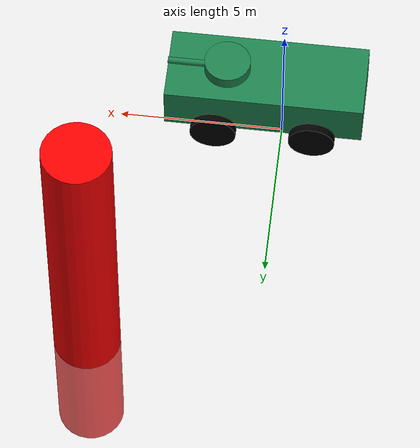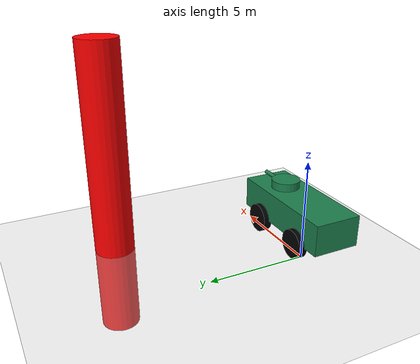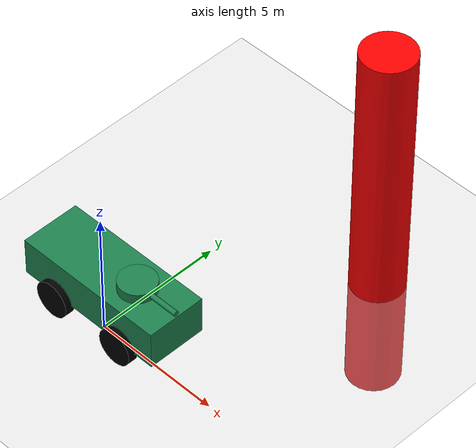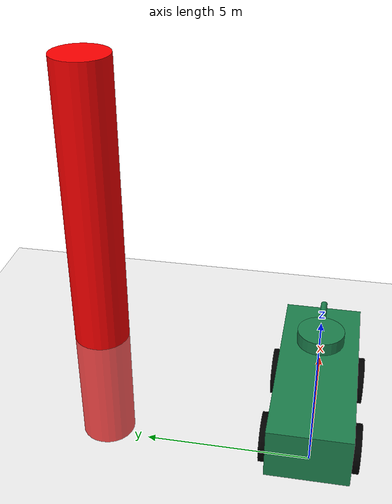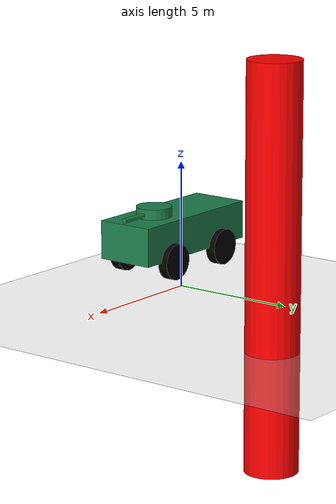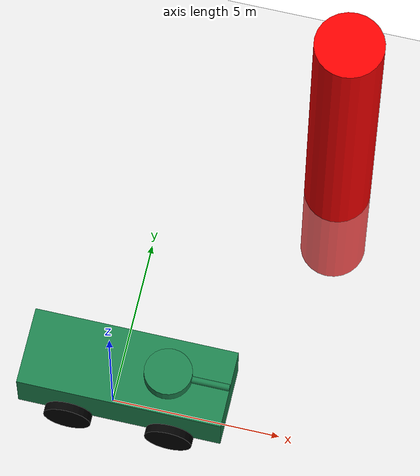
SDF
<?xml version="1.0" ?>
<sdf version="1.8">
    <world name="tank_world">
        <physics name="1ms" type="ignored">
            <max_step_size>0.001</max_step_size>
            <real_time_factor>1.0</real_time_factor>
        </physics>
        <plugin
            filename="gz-sim-physics-system"
            name="gz::sim::systems::Physics">
        </plugin>
        <plugin
            filename="gz-sim-user-commands-system"
            name="gz::sim::systems::UserCommands">
        </plugin>
        <plugin
            filename="gz-sim-scene-broadcaster-system"
            name="gz::sim::systems::SceneBroadcaster">
        </plugin>
        <plugin
            filename="libignition-gazebo-sensors-system.so"
            name="ignition::gazebo::systems::Sensors">
            <render_engine>ogre2</render_engine>
        </plugin>
        <light type="directional" name="sun">
            <cast_shadows>true</cast_shadows>
            <pose>0 0 10 0 0 0</pose>
            <diffuse>0.8 0.8 0.8 1</diffuse>
            <specular>0.2 0.2 0.2 1</specular>
            <attenuation>
                <range>1000</range>
                <constant>0.9</constant>
                <linear>0.01</linear>
                <quadratic>0.001</quadratic>
            </attenuation>
            <direction>-0.5 0.1 -0.9</direction>
        </light>

        <model name="ground_plane">
            <static>true</static>
            <link name="link">
                <collision name="collision">
                <geometry>
                    <plane>
                    <normal>0 0 1</normal>
                    </plane>
                </geometry>
                </collision>
                <visual name="visual">
                <geometry>
                    <plane>
                    <normal>0 0 1</normal>
                    <size>1000 1000</size>
                    </plane>
                </geometry>
                <material>
                    <ambient>0.8 0.8 0.8 1</ambient>
                    <diffuse>0.8 0.8 0.8 1</diffuse>
                    <specular>0.8 0.8 0.8 1</specular>
                </material>
                </visual>
            </link>
        </model>

        <model name="target1">
            <pose relative_to="world">5 8 3 0 0 0</pose>
            <link name="body">
                <visual name="visual">
                    <geometry>
                    <cylinder>
                        <radius>1</radius>
                        <length>15</length>
                    </cylinder>
                    </geometry>
                    <material>
                    <ambient>1 0 0 1</ambient>
                    <diffuse>1 0 0 1</diffuse>
                    <specular>1 0 0 1</specular>
                    </material>
                </visual>
                <collision name="collision">
                    <geometry>
                    <cylinder>
                        <radius>1</radius>
                        <length>30</length>
                    </cylinder>
                    </geometry>
                </collision>
            </link>
        </model>

        <model name='tank' canonical_link='chassis'>
            <plugin
                filename="libignition-gazebo-diff-drive-system.so"
                name="ignition::gazebo::systems::DiffDrive">
                <left_joint>left_front_wheel_joint</left_joint>
                <right_joint>right_front_wheel_joint</right_joint>
                <wheel_separation>2.4</wheel_separation>
                <wheel_radius>0.7</wheel_radius>
                <odom_publish_frequency>1</odom_publish_frequency>
                <topic>cmd_vel</topic>
            </plugin>
            <plugin
                filename="libignition-gazebo-joint-controller-system.so"
                name="ignition::gazebo::systems::JointController">
                <joint_name>turret_joint</joint_name>
                <topic>cmd_turret</topic>
                <type>position</type>
            </plugin>
            <pose relative_to='world'>0 0 2.0 0 0 0</pose>
            <link name='chassis'>
                <pose relative_to='__model__'>0.5 0 0.4 0 0 0</pose>
                <inertial>
                    <mass>1.14395</mass>
                    <inertia>
                        <ixx>0.095329</ixx>
                        <ixy>0</ixy>
                        <ixz>0</ixz>
                        <iyy>0.381317</iyy>
                        <iyz>0</iyz>
                        <izz>0.476646</izz>
                    </inertia>
                </inertial>
                <visual name='visual'>
                    <geometry>
                        <box>
                            <size>6.0 2.3 1.5</size>
                        </box>
                    </geometry>
                    <material>
                        <ambient>0.11 0.5 0.3 1</ambient>
                        <diffuse>0.11 0.5 0.3 1</diffuse>
                        <specular>0.11 0.5 0.3 1</specular>
                    </material>
                </visual>
                <collision name='collision'>
                    <geometry>
                        <box>
                            <size>5.0 2.3 1.8</size>
                        </box>
                    </geometry>
                </collision>
                <sensor name='gpu_lidar' type='gpu_lidar'>"
                    <pose relative_to='lidar_frame'>0 0 0 0 0 0</pose>
                    <topic>lidar</topic>
                    <update_rate>10</update_rate>
                    <ray>
                        <scan>
                            <horizontal>
                                <samples>640</samples>
                                <resolution>1</resolution>
                                <min_angle>-1.396263</min_angle>
                                <max_angle>1.396263</max_angle>
                            </horizontal>
                            <vertical>
                                <samples>1</samples>
                                <resolution>0.01</resolution>
                                <min_angle>0</min_angle>
                                <max_angle>0</max_angle>
                            </vertical>
                        </scan>
                        <range>
                            <min>0.08</min>
                            <max>10.0</max>
                            <resolution>0.01</resolution>
                        </range>
                    </ray>
                    <always_on>1</always_on>
                    <visualize>true</visualize>
                </sensor>
            </link>

            <frame name='lidar_frame' attached_to='chassis'>
                <pose>0 0 0.5 0 0 0</pose>
            </frame>

            <!--Bal hátsó kerék-->
            <link name='left_wheel'>
                <pose relative_to="chassis">-1.5 1.2 -0.8 -1.5707 0 0</pose>
                <inertial>
                    <mass>1</mass>
                    <inertia>
                        <ixx>0.043333</ixx>
                        <ixy>0</ixy>
                        <ixz>0</ixz>
                        <iyy>0.043333</iyy>
                        <iyz>0</iyz>
                        <izz>0.08</izz>
                    </inertia>
                </inertial>
                <visual name='visual'>
                    <geometry>
                        <cylinder>
                            <radius>0.7</radius>
                            <length>0.4</length>
                        </cylinder>
                    </geometry>
                    <material>
                        <ambient>0 0 0 1</ambient>
                        <diffuse>0 0 0 1 </diffuse>
                        <specular>0 0 0 1 </specular>
                    </material>
                </visual>
                <collision name='collision'>
                    <geometry>
                        <cylinder>
                            <radius>0.7</radius>
                            <length>0.4</length>
                        </cylinder>
                    </geometry>
                </collision>
            </link>

            <!--Bal első kerék-->
            <link name='left_front_wheel'>
                <pose relative_to="chassis">1.5 1.2 -0.8 -1.5707 0 0</pose>
                <inertial>
                    <mass>1</mass>
                    <inertia>
                        <ixx>0.043333</ixx>
                        <ixy>0</ixy>
                        <ixz>0</ixz>
                        <iyy>0.043333</iyy>
                        <iyz>0</iyz>
                        <izz>0.08</izz>
                    </inertia>
                </inertial>
                <visual name='visual'>
                    <geometry>
                        <cylinder>
                            <radius>0.7</radius>
                            <length>0.4</length>
                        </cylinder>
                    </geometry>
                    <material>
                        <ambient>0 0 0 1 </ambient>
                        <diffuse>0 0 0 1</diffuse>
                        <specular>0 0 0 1</specular>
                    </material>
                </visual>
                <collision name='collision'>
                    <geometry>
                        <cylinder>
                            <radius>0.7</radius>
                            <length>0.4</length>
                        </cylinder>
                    </geometry>
                </collision>
            </link>

            <!--Jobb hátsó kerék-->
            <link name='right_wheel'>
                <pose relative_to="chassis">-1.5 -1.2 -0.8 -1.5707 0 0</pose>
                <inertial>
                    <mass>1</mass>
                    <inertia>
                        <ixx>0.043333</ixx>
                        <ixy>0</ixy>
                        <ixz>0</ixz>
                        <iyy>0.043333</iyy>
                        <iyz>0</iyz>
                        <izz>0.08</izz>
                    </inertia>
                </inertial>
                <visual name='visual'>
                    <geometry>
                        <cylinder>
                            <radius>0.7</radius>
                            <length>0.4</length>
                        </cylinder>
                    </geometry>
                    <material>
                        <ambient>0 0 0 1</ambient>
                        <diffuse>0 0 0 1</diffuse>
                        <specular>0 0 0 1</specular>
                    </material>
                </visual>
                <collision name='collision'>
                    <geometry>
                        <cylinder>
                            <radius>0.7</radius>
                            <length>0.4</length>
                        </cylinder>
                    </geometry>
                </collision>
            </link>

            <!--Jobb első kerék-->
            <link name='right_front_wheel'>
                <pose relative_to="chassis">1.5 -1.2 -0.8 -1.5707 0 0</pose>
                <inertial>
                    <mass>1</mass>
                    <inertia>
                        <ixx>0.043333</ixx>
                        <ixy>0</ixy>
                        <ixz>0</ixz>
                        <iyy>0.043333</iyy>
                        <iyz>0</iyz>
                        <izz>0.08</izz>
                    </inertia>
                </inertial>
                <visual name='visual'>
                    <geometry>
                        <cylinder>
                            <radius>0.7</radius>
                            <length>0.4</length>
                        </cylinder>
                    </geometry>
                    <material>
                        <ambient>0 0 0 1</ambient>
                        <diffuse>0 0 0 1</diffuse>
                        <specular>0 0 0 1</specular>
                    </material>
                </visual>
                <collision name='collision'>
                    <geometry>
                        <cylinder>
                            <radius>0.7</radius>
                            <length>0.4</length>
                        </cylinder>
                    </geometry>
                </collision>
            </link>

            <!--Torony-->
            <link name='turret'>
                <pose relative_to="chassis">1.2 0 0.9 0 0 0</pose>
                <inertial>
                    <mass>1</mass>
                    <inertia>
                        <ixx>0.043333</ixx>
                        <ixy>0</ixy>
                        <ixz>0</ixz>
                        <iyy>0.043333</iyy>
                        <iyz>0</iyz>
                        <izz>0.08</izz>
                    </inertia>
                </inertial>
                <visual name='visual'>
                    <geometry>
                        <cylinder>
                            <radius>0.7</radius>
                            <length>0.5</length>
                        </cylinder>
                    </geometry>
                    <material>
                        <ambient>0.11 0.5 0.3 1</ambient>
                        <diffuse>0.11 0.5 0.3 1</diffuse>
                        <specular>0.11 0.5 0.3 1</specular>
                    </material>
                </visual>
                <collision name='collision'>
                    <geometry>
                        <cylinder>
                            <radius>0.7</radius>
                            <length>0.5</length>
                        </cylinder>
                    </geometry>
                </collision>
            </link>

            <!--Lézer-->
            <link name='laser'>
                <pose relative_to="turret">1.2 0 0 0 1.57079633 0</pose>
                <inertial>
                    <mass>1</mass>
                    <inertia>
                        <ixx>0.043333</ixx>
                        <ixy>0</ixy>
                        <ixz>0</ixz>
                        <iyy>0.043333</iyy>
                        <iyz>0</iyz>
                        <izz>0.08</izz>
                    </inertia>
                </inertial>
                <visual name='visual'>
                    <geometry>
                        <cylinder>
                            <radius>0.1</radius>
                            <length>1.2</length>
                        </cylinder>
                    </geometry>
                    <material>
                        <ambient>0.11 0.5 0.3 1</ambient>
                        <diffuse>0.11 0.5 0.3 1</diffuse>
                        <specular>0.11 0.5 0.3 1</specular>
                    </material>
                </visual>
                <collision name='collision'>
                    <geometry>
                        <cylinder>
                            <radius>0.7</radius>
                            <length>0.5</length>
                        </cylinder>
                    </geometry>
                </collision>
            </link>

            <!--Lézer joint-->
            <joint name='laser_joint' type='fixed'>
                <pose relative_to='turret'/>
                <parent>turret</parent>
                <child>laser</child>
            </joint>

            <!--Torony joint-->
            <joint name='turret_joint' type='revolute'>
                <pose relative_to='turret'/>
                <parent>chassis</parent>
                <child>turret</child>
                <axis>
                    <xyz expressed_in='__model__'>0 0 1</xyz>
                    <limit>
                        <lower>-1.79769e+308</lower>
                        <upper>1.79769e+308</upper>
                    </limit>
                </axis>
            </joint>

            <!--Bal kerék joint-->
            <joint name='left_wheel_joint' type='revolute'>
                <pose relative_to='left_wheel'/>
                <parent>chassis</parent>
                <child>left_wheel</child>
                <axis>
                    <xyz expressed_in='__model__'>0 1 0</xyz>
                    <limit>
                        <lower>-1.79769e+308</lower>
                        <upper>1.79769e+308</upper>
                    </limit>
                </axis>
            </joint>

            <!--Bal első kerék joint-->
            <joint name='left_front_wheel_joint' type='revolute'>
                <pose relative_to='left_front_wheel'/>
                <parent>chassis</parent>
                <child>left_front_wheel</child>
                <axis>
                    <xyz expressed_in='__model__'>0 1 0</xyz>
                    <limit>
                        <lower>-1.79769e+308</lower>
                        <upper>1.79769e+308</upper>
                    </limit>
                </axis>
                <controller>
                    <velocity name='left_front_wheel_velocity_controller'/>
                </controller>
            </joint>

            <!--Jobb kerék joint-->
            <joint name='right_wheel_joint' type='revolute'>
                <pose relative_to='right_wheel'/>
                <parent>chassis</parent>
                <child>right_wheel</child>
                <axis>
                    <xyz expressed_in='__model__'>0 1 0</xyz>
                    <limit>
                        <lower>-1.79769e+308</lower>
                        <upper>1.79769e+308</upper>
                    </limit>
                </axis>
            </joint>

            <!--Jobb első kerék joint-->
            <joint name='right_front_wheel_joint' type='revolute'>
                <pose relative_to='right_front_wheel'/>
                <parent>chassis</parent>s
                <child>right_front_wheel</child>
                <axis>
                    <xyz expressed_in='__model__'>0 1 0</xyz>
                    <limit>
                        <lower>-1.79769e+308</lower>
                        <upper>1.79769e+308</upper>
                    </limit>
                </axis>
            </joint>
        </model>
    </world>
</sdf>
